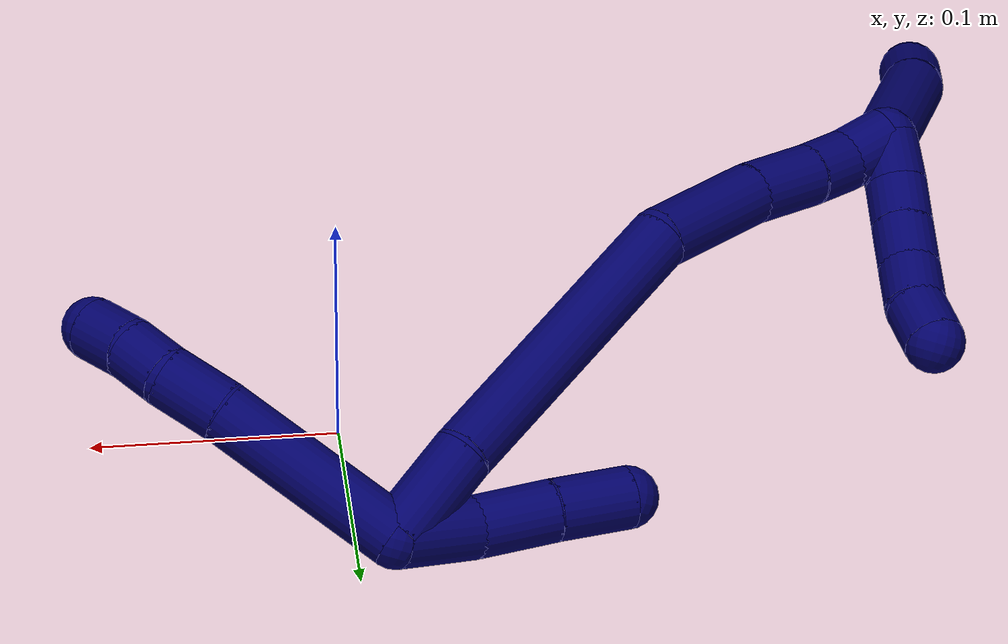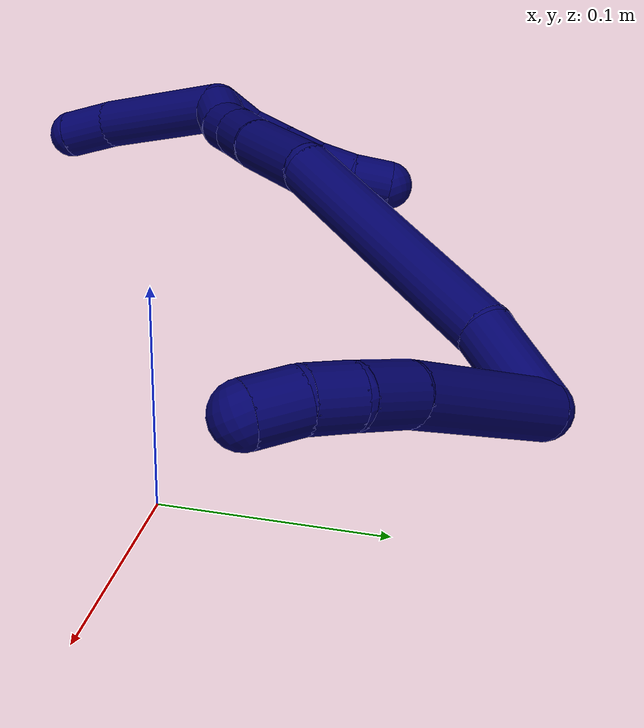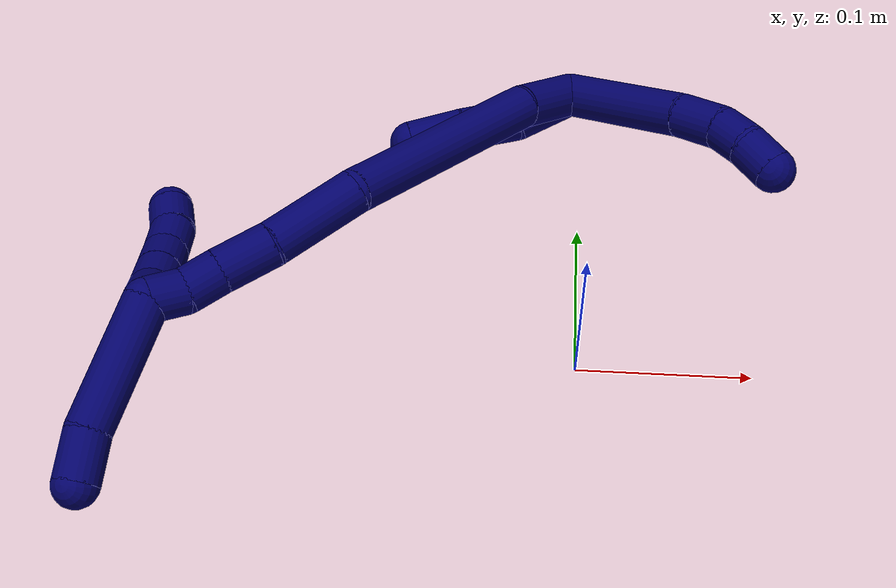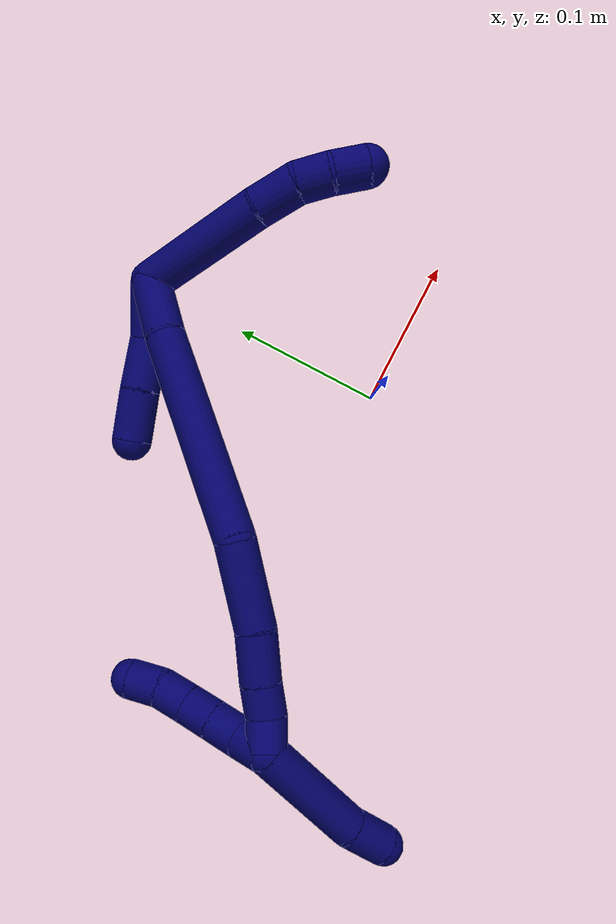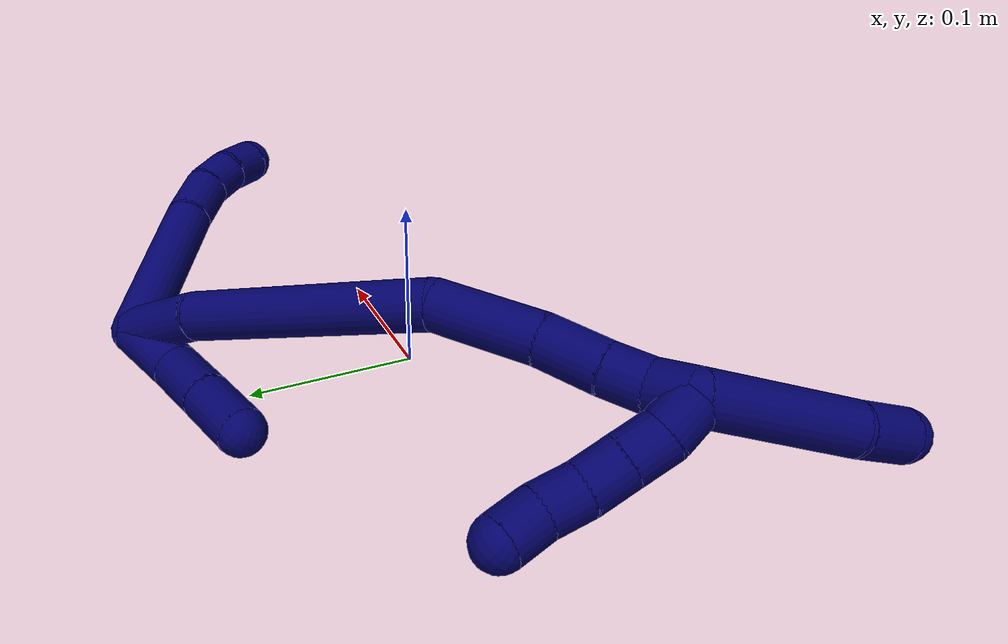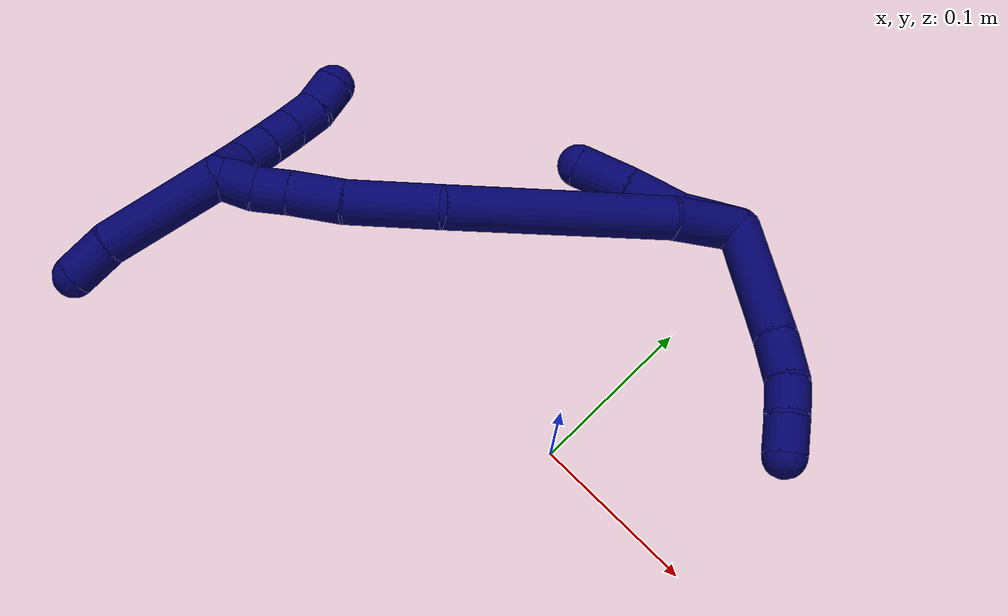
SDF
<sdf version="1.7">
 <world name="default">
  <model name="7">
   <static>0</static>
   <link name="7">
    <collision name="collision-cylinder-e_1_2_8">
     <pose>0.034176 -0.018055 0.013488 0.929188 0.987816 0.527137</pose>
     <geometry><cylinder><radius>0.0125</radius><length>0.081875</length></cylinder></geometry>
     <surface>
      <friction><ode><mu>1.16</mu><mu2>1.16</mu2><slip1>0</slip1><slip2>0</slip2></ode></friction>
      <contact><ode><kp>1e+06</kp><kd>1</kd><max_vel>0</max_vel><min_depth>0.001</min_depth></ode></contact>
     </surface>
    </collision>
    <visual name="visual-cylinder-e_1_2_8">
     <pose>0.034176 -0.018055 0.013488 0.929188 0.987816 0.527137</pose>
     <geometry><cylinder><radius>0.0125</radius><length>0.081875</length></cylinder></geometry>
     <material><ambient>0.003922 0 0.403922 1</ambient></material>
    </visual>
    <collision name="collision-cylinder-e_2_8_9">
     <pose>0.079246 -0.043259 0.03042 1.12179 0.941265 0.618688</pose>
     <geometry><cylinder><radius>0.0125</radius><length>0.026956</length></cylinder></geometry>
     <surface>
      <friction><ode><mu>1.16</mu><mu2>1.16</mu2><slip1>0</slip1><slip2>0</slip2></ode></friction>
      <contact><ode><kp>1e+06</kp><kd>1</kd><max_vel>0</max_vel><min_depth>0.001</min_depth></ode></contact>
     </surface>
    </collision>
    <visual name="visual-cylinder-e_2_8_9">
     <pose>0.079246 -0.043259 0.03042 1.12179 0.941265 0.618688</pose>
     <geometry><cylinder><radius>0.0125</radius><length>0.026956</length></cylinder></geometry>
     <material><ambient>0.003922 0 0.403922 1</ambient></material>
    </visual>
    <collision name="collision-cylinder-e_3_9_10">
     <pose>0.096513 -0.057695 0.036774 1.1909 0.682127 0.471959</pose>
     <geometry><cylinder><radius>0.0125</radius><length>0.020216</length></cylinder></geometry>
     <surface>
      <friction><ode><mu>1.16</mu><mu2>1.16</mu2><slip1>0</slip1><slip2>0</slip2></ode></friction>
      <contact><ode><kp>1e+06</kp><kd>1</kd><max_vel>0</max_vel><min_depth>0.001</min_depth></ode></contact>
     </surface>
    </collision>
    <visual name="visual-cylinder-e_3_9_10">
     <pose>0.096513 -0.057695 0.036774 1.1909 0.682127 0.471959</pose>
     <geometry><cylinder><radius>0.0125</radius><length>0.020216</length></cylinder></geometry>
     <material><ambient>0.003922 0 0.403922 1</ambient></material>
    </visual>
    <collision name="collision-cylinder-e_4_10_6">
     <pose>0.108597 -0.073643 0.041134 1.40488 0.576655 0.491945</pose>
     <geometry><cylinder><radius>0.0125</radius><length>0.020952</length></cylinder></geometry>
     <surface>
      <friction><ode><mu>1.16</mu><mu2>1.16</mu2><slip1>0</slip1><slip2>0</slip2></ode></friction>
      <contact><ode><kp>1e+06</kp><kd>1</kd><max_vel>0</max_vel><min_depth>0.001</min_depth></ode></contact>
     </surface>
    </collision>
    <visual name="visual-cylinder-e_4_10_6">
     <pose>0.108597 -0.073643 0.041134 1.40488 0.576655 0.491945</pose>
     <geometry><cylinder><radius>0.0125</radius><length>0.020952</length></cylinder></geometry>
     <material><ambient>0.003922 0 0.403922 1</ambient></material>
    </visual>
    <collision name="collision-cylinder-e_1_2_11">
     <pose>-0.016119 -0.004759 0.005342 0.727691 -1.15308 -0.485455</pose>
     <geometry><cylinder><radius>0.0125</radius><length>0.035271</length></cylinder></geometry>
     <surface>
      <friction><ode><mu>1.16</mu><mu2>1.16</mu2><slip1>0</slip1><slip2>0</slip2></ode></friction>
      <contact><ode><kp>1e+06</kp><kd>1</kd><max_vel>0</max_vel><min_depth>0.001</min_depth></ode></contact>
     </surface>
    </collision>
    <visual name="visual-cylinder-e_1_2_11">
     <pose>-0.016119 -0.004759 0.005342 0.727691 -1.15308 -0.485455</pose>
     <geometry><cylinder><radius>0.0125</radius><length>0.035271</length></cylinder></geometry>
     <material><ambient>0.003922 0 0.403922 1</ambient></material>
    </visual>
    <collision name="collision-cylinder-e_2_11_12">
     <pose>-0.047083 -0.010214 0.017825 0.097289 -1.1206 -0.061065</pose>
     <geometry><cylinder><radius>0.0125</radius><length>0.032973</length></cylinder></geometry>
     <surface>
      <friction><ode><mu>1.16</mu><mu2>1.16</mu2><slip1>0</slip1><slip2>0</slip2></ode></friction>
      <contact><ode><kp>1e+06</kp><kd>1</kd><max_vel>0</max_vel><min_depth>0.001</min_depth></ode></contact>
     </surface>
    </collision>
    <visual name="visual-cylinder-e_2_11_12">
     <pose>-0.047083 -0.010214 0.017825 0.097289 -1.1206 -0.061065</pose>
     <geometry><cylinder><radius>0.0125</radius><length>0.032973</length></cylinder></geometry>
     <material><ambient>0.003922 0 0.403922 1</ambient></material>
    </visual>
    <collision name="collision-cylinder-e_3_12_5">
     <pose>-0.076464 -0.012464 0.031158 0.245659 -1.15697 -0.160879</pose>
     <geometry><cylinder><radius>0.0125</radius><length>0.031755</length></cylinder></geometry>
     <surface>
      <friction><ode><mu>1.16</mu><mu2>1.16</mu2><slip1>0</slip1><slip2>0</slip2></ode></friction>
      <contact><ode><kp>1e+06</kp><kd>1</kd><max_vel>0</max_vel><min_depth>0.001</min_depth></ode></contact>
     </surface>
    </collision>
    <visual name="visual-cylinder-e_3_12_5">
     <pose>-0.076464 -0.012464 0.031158 0.245659 -1.15697 -0.160879</pose>
     <geometry><cylinder><radius>0.0125</radius><length>0.031755</length></cylinder></geometry>
     <material><ambient>0.003922 0 0.403922 1</ambient></material>
    </visual>
    <collision name="collision-cylinder-e_1_2_13">
     <pose>-0.009987 -0.004998 0.018435 0.264775 -0.481782 -0.065404</pose>
     <geometry><cylinder><radius>0.0125</radius><length>0.043108</length></cylinder></geometry>
     <surface>
      <friction><ode><mu>1.16</mu><mu2>1.16</mu2><slip1>0</slip1><slip2>0</slip2></ode></friction>
      <contact><ode><kp>1e+06</kp><kd>1</kd><max_vel>0</max_vel><min_depth>0.001</min_depth></ode></contact>
     </surface>
    </collision>
    <visual name="visual-cylinder-e_1_2_13">
     <pose>-0.009987 -0.004998 0.018435 0.264775 -0.481782 -0.065404</pose>
     <geometry><cylinder><radius>0.0125</radius><length>0.043108</length></cylinder></geometry>
     <material><ambient>0.003922 0 0.403922 1</ambient></material>
    </visual>
    <collision name="collision-cylinder-e_2_13_14">
     <pose>-0.055202 -0.034795 0.086628 0.462334 -0.564791 -0.136376</pose>
     <geometry><cylinder><radius>0.0125</radius><length>0.131633</length></cylinder></geometry>
     <surface>
      <friction><ode><mu>1.16</mu><mu2>1.16</mu2><slip1>0</slip1><slip2>0</slip2></ode></friction>
      <contact><ode><kp>1e+06</kp><kd>1</kd><max_vel>0</max_vel><min_depth>0.001</min_depth></ode></contact>
     </surface>
    </collision>
    <visual name="visual-cylinder-e_2_13_14">
     <pose>-0.055202 -0.034795 0.086628 0.462334 -0.564791 -0.136376</pose>
     <geometry><cylinder><radius>0.0125</radius><length>0.131633</length></cylinder></geometry>
     <material><ambient>0.003922 0 0.403922 1</ambient></material>
    </visual>
    <collision name="collision-cylinder-e_3_14_15">
     <pose>-0.110361 -0.071205 0.149734 0.716006 -0.844832 -0.333201</pose>
     <geometry><cylinder><radius>0.0125</radius><length>0.053302</length></cylinder></geometry>
     <surface>
      <friction><ode><mu>1.16</mu><mu2>1.16</mu2><slip1>0</slip1><slip2>0</slip2></ode></friction>
      <contact><ode><kp>1e+06</kp><kd>1</kd><max_vel>0</max_vel><min_depth>0.001</min_depth></ode></contact>
     </surface>
    </collision>
    <visual name="visual-cylinder-e_3_14_15">
     <pose>-0.110361 -0.071205 0.149734 0.716006 -0.844832 -0.333201</pose>
     <geometry><cylinder><radius>0.0125</radius><length>0.053302</length></cylinder></geometry>
     <material><ambient>0.003922 0 0.403922 1</ambient></material>
    </visual>
    <collision name="collision-cylinder-e_4_15_16">
     <pose>-0.143102 -0.088076 0.169885 0.658066 -0.979659 -0.360151</pose>
     <geometry><cylinder><radius>0.0125</radius><length>0.030857</length></cylinder></geometry>
     <surface>
      <friction><ode><mu>1.16</mu><mu2>1.16</mu2><slip1>0</slip1><slip2>0</slip2></ode></friction>
      <contact><ode><kp>1e+06</kp><kd>1</kd><max_vel>0</max_vel><min_depth>0.001</min_depth></ode></contact>
     </surface>
    </collision>
    <visual name="visual-cylinder-e_4_15_16">
     <pose>-0.143102 -0.088076 0.169885 0.658066 -0.979659 -0.360151</pose>
     <geometry><cylinder><radius>0.0125</radius><length>0.030857</length></cylinder></geometry>
     <material><ambient>0.003922 0 0.403922 1</ambient></material>
    </visual>
    <collision name="collision-cylinder-e_5_16_17">
     <pose>-0.164065 -0.097377 0.181565 0.692055 -0.91026 -0.349293</pose>
     <geometry><cylinder><radius>0.0125</radius><length>0.020648</length></cylinder></geometry>
     <surface>
      <friction><ode><mu>1.16</mu><mu2>1.16</mu2><slip1>0</slip1><slip2>0</slip2></ode></friction>
      <contact><ode><kp>1e+06</kp><kd>1</kd><max_vel>0</max_vel><min_depth>0.001</min_depth></ode></contact>
     </surface>
    </collision>
    <visual name="visual-cylinder-e_5_16_17">
     <pose>-0.164065 -0.097377 0.181565 0.692055 -0.91026 -0.349293</pose>
     <geometry><cylinder><radius>0.0125</radius><length>0.020648</length></cylinder></geometry>
     <material><ambient>0.003922 0 0.403922 1</ambient></material>
    </visual>
    <collision name="collision-cylinder-e_6_17_1">
     <pose>-0.179823 -0.102769 0.193144 0.198723 -0.838568 -0.088808</pose>
     <geometry><cylinder><radius>0.0125</radius><length>0.020452</length></cylinder></geometry>
     <surface>
      <friction><ode><mu>1.16</mu><mu2>1.16</mu2><slip1>0</slip1><slip2>0</slip2></ode></friction>
      <contact><ode><kp>1e+06</kp><kd>1</kd><max_vel>0</max_vel><min_depth>0.001</min_depth></ode></contact>
     </surface>
    </collision>
    <visual name="visual-cylinder-e_6_17_1">
     <pose>-0.179823 -0.102769 0.193144 0.198723 -0.838568 -0.088808</pose>
     <geometry><cylinder><radius>0.0125</radius><length>0.020452</length></cylinder></geometry>
     <material><ambient>0.003922 0 0.403922 1</ambient></material>
    </visual>
    <collision name="collision-cylinder-e_1_1_18">
     <pose>-0.202139 -0.135497 0.211325 1.22007 -0.414764 -0.292042</pose>
     <geometry><cylinder><radius>0.0125</radius><length>0.073016</length></cylinder></geometry>
     <surface>
      <friction><ode><mu>1.16</mu><mu2>1.16</mu2><slip1>0</slip1><slip2>0</slip2></ode></friction>
      <contact><ode><kp>1e+06</kp><kd>1</kd><max_vel>0</max_vel><min_depth>0.001</min_depth></ode></contact>
     </surface>
    </collision>
    <visual name="visual-cylinder-e_1_1_18">
     <pose>-0.202139 -0.135497 0.211325 1.22007 -0.414764 -0.292042</pose>
     <geometry><cylinder><radius>0.0125</radius><length>0.073016</length></cylinder></geometry>
     <material><ambient>0.003922 0 0.403922 1</ambient></material>
    </visual>
    <collision name="collision-cylinder-e_2_18_4">
     <pose>-0.220191 -0.17957 0.225925 1.32983 -0.250132 -0.1965</pose>
     <geometry><cylinder><radius>0.0125</radius><length>0.026984</length></cylinder></geometry>
     <surface>
      <friction><ode><mu>1.16</mu><mu2>1.16</mu2><slip1>0</slip1><slip2>0</slip2></ode></friction>
      <contact><ode><kp>1e+06</kp><kd>1</kd><max_vel>0</max_vel><min_depth>0.001</min_depth></ode></contact>
     </surface>
    </collision>
    <visual name="visual-cylinder-e_2_18_4">
     <pose>-0.220191 -0.17957 0.225925 1.32983 -0.250132 -0.1965</pose>
     <geometry><cylinder><radius>0.0125</radius><length>0.026984</length></cylinder></geometry>
     <material><ambient>0.003922 0 0.403922 1</ambient></material>
    </visual>
    <collision name="collision-cylinder-e_1_1_19">
     <pose>-0.190669 -0.099957 0.19135 -2.68615 -0.330115 1.24644</pose>
     <geometry><cylinder><radius>0.0125</radius><length>0.02</length></cylinder></geometry>
     <surface>
      <friction><ode><mu>1.16</mu><mu2>1.16</mu2><slip1>0</slip1><slip2>0</slip2></ode></friction>
      <contact><ode><kp>1e+06</kp><kd>1</kd><max_vel>0</max_vel><min_depth>0.001</min_depth></ode></contact>
     </surface>
    </collision>
    <visual name="visual-cylinder-e_1_1_19">
     <pose>-0.190669 -0.099957 0.19135 -2.68615 -0.330115 1.24644</pose>
     <geometry><cylinder><radius>0.0125</radius><length>0.02</length></cylinder></geometry>
     <material><ambient>0.003922 0 0.403922 1</ambient></material>
    </visual>
    <collision name="collision-cylinder-e_2_19_20">
     <pose>-0.195285 -0.089502 0.175206 -2.45298 -0.137815 0.380287</pose>
     <geometry><cylinder><radius>0.0125</radius><length>0.02</length></cylinder></geometry>
     <surface>
      <friction><ode><mu>1.16</mu><mu2>1.16</mu2><slip1>0</slip1><slip2>0</slip2></ode></friction>
      <contact><ode><kp>1e+06</kp><kd>1</kd><max_vel>0</max_vel><min_depth>0.001</min_depth></ode></contact>
     </surface>
    </collision>
    <visual name="visual-cylinder-e_2_19_20">
     <pose>-0.195285 -0.089502 0.175206 -2.45298 -0.137815 0.380287</pose>
     <geometry><cylinder><radius>0.0125</radius><length>0.02</length></cylinder></geometry>
     <material><ambient>0.003922 0 0.403922 1</ambient></material>
    </visual>
    <collision name="collision-cylinder-e_3_20_21">
     <pose>-0.198113 -0.076921 0.159919 -2.45299 -0.146033 0.402455</pose>
     <geometry><cylinder><radius>0.0125</radius><length>0.02</length></cylinder></geometry>
     <surface>
      <friction><ode><mu>1.16</mu><mu2>1.16</mu2><slip1>0</slip1><slip2>0</slip2></ode></friction>
      <contact><ode><kp>1e+06</kp><kd>1</kd><max_vel>0</max_vel><min_depth>0.001</min_depth></ode></contact>
     </surface>
    </collision>
    <visual name="visual-cylinder-e_3_20_21">
     <pose>-0.198113 -0.076921 0.159919 -2.45299 -0.146033 0.402455</pose>
     <geometry><cylinder><radius>0.0125</radius><length>0.02</length></cylinder></geometry>
     <material><ambient>0.003922 0 0.403922 1</ambient></material>
    </visual>
    <collision name="collision-cylinder-e_4_21_22">
     <pose>-0.200294 -0.063408 0.145405 -2.33131 -0.072581 0.168909</pose>
     <geometry><cylinder><radius>0.0125</radius><length>0.02</length></cylinder></geometry>
     <surface>
      <friction><ode><mu>1.16</mu><mu2>1.16</mu2><slip1>0</slip1><slip2>0</slip2></ode></friction>
      <contact><ode><kp>1e+06</kp><kd>1</kd><max_vel>0</max_vel><min_depth>0.001</min_depth></ode></contact>
     </surface>
    </collision>
    <visual name="visual-cylinder-e_4_21_22">
     <pose>-0.200294 -0.063408 0.145405 -2.33131 -0.072581 0.168909</pose>
     <geometry><cylinder><radius>0.0125</radius><length>0.02</length></cylinder></geometry>
     <material><ambient>0.003922 0 0.403922 1</ambient></material>
    </visual>
    <collision name="collision-cylinder-e_5_22_3">
     <pose>-0.203756 -0.04836 0.132933 -2.19194 -0.277246 0.530043</pose>
     <geometry><cylinder><radius>0.0125</radius><length>0.02</length></cylinder></geometry>
     <surface>
      <friction><ode><mu>1.16</mu><mu2>1.16</mu2><slip1>0</slip1><slip2>0</slip2></ode></friction>
      <contact><ode><kp>1e+06</kp><kd>1</kd><max_vel>0</max_vel><min_depth>0.001</min_depth></ode></contact>
     </surface>
    </collision>
    <visual name="visual-cylinder-e_5_22_3">
     <pose>-0.203756 -0.04836 0.132933 -2.19194 -0.277246 0.530043</pose>
     <geometry><cylinder><radius>0.0125</radius><length>0.02</length></cylinder></geometry>
     <material><ambient>0.003922 0 0.403922 1</ambient></material>
    </visual>
    <collision name="collision-sphere-3">
     <pose>-0.206493 -0.040539 0.127335 0 -0 0</pose>
     <geometry><sphere><radius>0.0125</radius></sphere></geometry>
     <surface>
      <friction><ode><mu>1.16</mu><mu2>1.16</mu2><slip1>0</slip1><slip2>0</slip2></ode></friction>
      <contact><ode><kp>1e+06</kp><kd>1</kd><max_vel>0</max_vel><min_depth>0.001</min_depth></ode></contact>
     </surface>
    </collision>
    <visual name="visual-sphere-3">
     <pose>-0.206493 -0.040539 0.127335 0 -0 0</pose>
     <geometry><sphere><radius>0.0125</radius></sphere></geometry>
     <material><ambient>0.003922 0 0.403922 1</ambient></material>
    </visual>
    <collision name="collision-sphere-22">
     <pose>-0.201019 -0.056182 0.13853 0 -0 0</pose>
     <geometry><sphere><radius>0.0125</radius></sphere></geometry>
     <surface>
      <friction><ode><mu>1.16</mu><mu2>1.16</mu2><slip1>0</slip1><slip2>0</slip2></ode></friction>
      <contact><ode><kp>1e+06</kp><kd>1</kd><max_vel>0</max_vel><min_depth>0.001</min_depth></ode></contact>
     </surface>
    </collision>
    <visual name="visual-sphere-22">
     <pose>-0.201019 -0.056182 0.13853 0 -0 0</pose>
     <geometry><sphere><radius>0.0125</radius></sphere></geometry>
     <material><ambient>0.003922 0 0.403922 1</ambient></material>
    </visual>
    <collision name="collision-sphere-21">
     <pose>-0.199569 -0.070634 0.152279 0 -0 0</pose>
     <geometry><sphere><radius>0.0125</radius></sphere></geometry>
     <surface>
      <friction><ode><mu>1.16</mu><mu2>1.16</mu2><slip1>0</slip1><slip2>0</slip2></ode></friction>
      <contact><ode><kp>1e+06</kp><kd>1</kd><max_vel>0</max_vel><min_depth>0.001</min_depth></ode></contact>
     </surface>
    </collision>
    <visual name="visual-sphere-21">
     <pose>-0.199569 -0.070634 0.152279 0 -0 0</pose>
     <geometry><sphere><radius>0.0125</radius></sphere></geometry>
     <material><ambient>0.003922 0 0.403922 1</ambient></material>
    </visual>
    <collision name="collision-sphere-20">
     <pose>-0.196658 -0.083207 0.167558 0 -0 0</pose>
     <geometry><sphere><radius>0.0125</radius></sphere></geometry>
     <surface>
      <friction><ode><mu>1.16</mu><mu2>1.16</mu2><slip1>0</slip1><slip2>0</slip2></ode></friction>
      <contact><ode><kp>1e+06</kp><kd>1</kd><max_vel>0</max_vel><min_depth>0.001</min_depth></ode></contact>
     </surface>
    </collision>
    <visual name="visual-sphere-20">
     <pose>-0.196658 -0.083207 0.167558 0 -0 0</pose>
     <geometry><sphere><radius>0.0125</radius></sphere></geometry>
     <material><ambient>0.003922 0 0.403922 1</ambient></material>
    </visual>
    <collision name="collision-sphere-19">
     <pose>-0.193911 -0.095796 0.182854 0 -0 0</pose>
     <geometry><sphere><radius>0.0125</radius></sphere></geometry>
     <surface>
      <friction><ode><mu>1.16</mu><mu2>1.16</mu2><slip1>0</slip1><slip2>0</slip2></ode></friction>
      <contact><ode><kp>1e+06</kp><kd>1</kd><max_vel>0</max_vel><min_depth>0.001</min_depth></ode></contact>
     </surface>
    </collision>
    <visual name="visual-sphere-19">
     <pose>-0.193911 -0.095796 0.182854 0 -0 0</pose>
     <geometry><sphere><radius>0.0125</radius></sphere></geometry>
     <material><ambient>0.003922 0 0.403922 1</ambient></material>
    </visual>
    <collision name="collision-sphere-11">
     <pose>-0.032239 -0.009517 0.010684 0 -0 0</pose>
     <geometry><sphere><radius>0.0125</radius></sphere></geometry>
     <surface>
      <friction><ode><mu>1.16</mu><mu2>1.16</mu2><slip1>0</slip1><slip2>0</slip2></ode></friction>
      <contact><ode><kp>1e+06</kp><kd>1</kd><max_vel>0</max_vel><min_depth>0.001</min_depth></ode></contact>
     </surface>
    </collision>
    <visual name="visual-sphere-11">
     <pose>-0.032239 -0.009517 0.010684 0 -0 0</pose>
     <geometry><sphere><radius>0.0125</radius></sphere></geometry>
     <material><ambient>0.003922 0 0.403922 1</ambient></material>
    </visual>
    <collision name="collision-sphere-6">
     <pose>0.114309 -0.082304 0.042585 0 -0 0</pose>
     <geometry><sphere><radius>0.0125</radius></sphere></geometry>
     <surface>
      <friction><ode><mu>1.16</mu><mu2>1.16</mu2><slip1>0</slip1><slip2>0</slip2></ode></friction>
      <contact><ode><kp>1e+06</kp><kd>1</kd><max_vel>0</max_vel><min_depth>0.001</min_depth></ode></contact>
     </surface>
    </collision>
    <visual name="visual-sphere-6">
     <pose>0.114309 -0.082304 0.042585 0 -0 0</pose>
     <geometry><sphere><radius>0.0125</radius></sphere></geometry>
     <material><ambient>0.003922 0 0.403922 1</ambient></material>
    </visual>
    <collision name="collision-sphere-10">
     <pose>0.102886 -0.064981 0.039684 0 -0 0</pose>
     <geometry><sphere><radius>0.0125</radius></sphere></geometry>
     <surface>
      <friction><ode><mu>1.16</mu><mu2>1.16</mu2><slip1>0</slip1><slip2>0</slip2></ode></friction>
      <contact><ode><kp>1e+06</kp><kd>1</kd><max_vel>0</max_vel><min_depth>0.001</min_depth></ode></contact>
     </surface>
    </collision>
    <visual name="visual-sphere-10">
     <pose>0.102886 -0.064981 0.039684 0 -0 0</pose>
     <geometry><sphere><radius>0.0125</radius></sphere></geometry>
     <material><ambient>0.003922 0 0.403922 1</ambient></material>
    </visual>
    <collision name="collision-sphere-9">
     <pose>0.09014 -0.050408 0.033865 0 -0 0</pose>
     <geometry><sphere><radius>0.0125</radius></sphere></geometry>
     <surface>
      <friction><ode><mu>1.16</mu><mu2>1.16</mu2><slip1>0</slip1><slip2>0</slip2></ode></friction>
      <contact><ode><kp>1e+06</kp><kd>1</kd><max_vel>0</max_vel><min_depth>0.001</min_depth></ode></contact>
     </surface>
    </collision>
    <visual name="visual-sphere-9">
     <pose>0.09014 -0.050408 0.033865 0 -0 0</pose>
     <geometry><sphere><radius>0.0125</radius></sphere></geometry>
     <material><ambient>0.003922 0 0.403922 1</ambient></material>
    </visual>
    <collision name="collision-sphere-2">
     <geometry><sphere><radius>0.0125</radius></sphere></geometry>
     <surface>
      <friction><ode><mu>1.16</mu><mu2>1.16</mu2><slip1>0</slip1><slip2>0</slip2></ode></friction>
      <contact><ode><kp>1e+06</kp><kd>1</kd><max_vel>0</max_vel><min_depth>0.001</min_depth></ode></contact>
     </surface>
    </collision>
    <visual name="visual-sphere-2">
     <geometry><sphere><radius>0.0125</radius></sphere></geometry>
     <material><ambient>0.003922 0 0.403922 1</ambient></material>
    </visual>
    <collision name="collision-sphere-8">
     <pose>0.068352 -0.03611 0.026976 0 -0 0</pose>
     <geometry><sphere><radius>0.0125</radius></sphere></geometry>
     <surface>
      <friction><ode><mu>1.16</mu><mu2>1.16</mu2><slip1>0</slip1><slip2>0</slip2></ode></friction>
      <contact><ode><kp>1e+06</kp><kd>1</kd><max_vel>0</max_vel><min_depth>0.001</min_depth></ode></contact>
     </surface>
    </collision>
    <visual name="visual-sphere-8">
     <pose>0.068352 -0.03611 0.026976 0 -0 0</pose>
     <geometry><sphere><radius>0.0125</radius></sphere></geometry>
     <material><ambient>0.003922 0 0.403922 1</ambient></material>
    </visual>
    <collision name="collision-sphere-12">
     <pose>-0.061927 -0.010911 0.024965 0 -0 0</pose>
     <geometry><sphere><radius>0.0125</radius></sphere></geometry>
     <surface>
      <friction><ode><mu>1.16</mu><mu2>1.16</mu2><slip1>0</slip1><slip2>0</slip2></ode></friction>
      <contact><ode><kp>1e+06</kp><kd>1</kd><max_vel>0</max_vel><min_depth>0.001</min_depth></ode></contact>
     </surface>
    </collision>
    <visual name="visual-sphere-12">
     <pose>-0.061927 -0.010911 0.024965 0 -0 0</pose>
     <geometry><sphere><radius>0.0125</radius></sphere></geometry>
     <material><ambient>0.003922 0 0.403922 1</ambient></material>
    </visual>
    <collision name="collision-sphere-5">
     <pose>-0.091001 -0.014016 0.037351 0 -0 0</pose>
     <geometry><sphere><radius>0.0125</radius></sphere></geometry>
     <surface>
      <friction><ode><mu>1.16</mu><mu2>1.16</mu2><slip1>0</slip1><slip2>0</slip2></ode></friction>
      <contact><ode><kp>1e+06</kp><kd>1</kd><max_vel>0</max_vel><min_depth>0.001</min_depth></ode></contact>
     </surface>
    </collision>
    <visual name="visual-sphere-5">
     <pose>-0.091001 -0.014016 0.037351 0 -0 0</pose>
     <geometry><sphere><radius>0.0125</radius></sphere></geometry>
     <material><ambient>0.003922 0 0.403922 1</ambient></material>
    </visual>
    <collision name="collision-sphere-13">
     <pose>-0.019975 -0.009997 0.03687 0 -0 0</pose>
     <geometry><sphere><radius>0.0125</radius></sphere></geometry>
     <surface>
      <friction><ode><mu>1.16</mu><mu2>1.16</mu2><slip1>0</slip1><slip2>0</slip2></ode></friction>
      <contact><ode><kp>1e+06</kp><kd>1</kd><max_vel>0</max_vel><min_depth>0.001</min_depth></ode></contact>
     </surface>
    </collision>
    <visual name="visual-sphere-13">
     <pose>-0.019975 -0.009997 0.03687 0 -0 0</pose>
     <geometry><sphere><radius>0.0125</radius></sphere></geometry>
     <material><ambient>0.003922 0 0.403922 1</ambient></material>
    </visual>
    <collision name="collision-sphere-14">
     <pose>-0.09043 -0.059592 0.136387 0 -0 0</pose>
     <geometry><sphere><radius>0.0125</radius></sphere></geometry>
     <surface>
      <friction><ode><mu>1.16</mu><mu2>1.16</mu2><slip1>0</slip1><slip2>0</slip2></ode></friction>
      <contact><ode><kp>1e+06</kp><kd>1</kd><max_vel>0</max_vel><min_depth>0.001</min_depth></ode></contact>
     </surface>
    </collision>
    <visual name="visual-sphere-14">
     <pose>-0.09043 -0.059592 0.136387 0 -0 0</pose>
     <geometry><sphere><radius>0.0125</radius></sphere></geometry>
     <material><ambient>0.003922 0 0.403922 1</ambient></material>
    </visual>
    <collision name="collision-sphere-15">
     <pose>-0.130292 -0.082818 0.163082 0 -0 0</pose>
     <geometry><sphere><radius>0.0125</radius></sphere></geometry>
     <surface>
      <friction><ode><mu>1.16</mu><mu2>1.16</mu2><slip1>0</slip1><slip2>0</slip2></ode></friction>
      <contact><ode><kp>1e+06</kp><kd>1</kd><max_vel>0</max_vel><min_depth>0.001</min_depth></ode></contact>
     </surface>
    </collision>
    <visual name="visual-sphere-15">
     <pose>-0.130292 -0.082818 0.163082 0 -0 0</pose>
     <geometry><sphere><radius>0.0125</radius></sphere></geometry>
     <material><ambient>0.003922 0 0.403922 1</ambient></material>
    </visual>
    <collision name="collision-sphere-16">
     <pose>-0.155913 -0.093335 0.176688 0 -0 0</pose>
     <geometry><sphere><radius>0.0125</radius></sphere></geometry>
     <surface>
      <friction><ode><mu>1.16</mu><mu2>1.16</mu2><slip1>0</slip1><slip2>0</slip2></ode></friction>
      <contact><ode><kp>1e+06</kp><kd>1</kd><max_vel>0</max_vel><min_depth>0.001</min_depth></ode></contact>
     </surface>
    </collision>
    <visual name="visual-sphere-16">
     <pose>-0.155913 -0.093335 0.176688 0 -0 0</pose>
     <geometry><sphere><radius>0.0125</radius></sphere></geometry>
     <material><ambient>0.003922 0 0.403922 1</ambient></material>
    </visual>
    <collision name="collision-sphere-17">
     <pose>-0.172218 -0.101419 0.186442 0 -0 0</pose>
     <geometry><sphere><radius>0.0125</radius></sphere></geometry>
     <surface>
      <friction><ode><mu>1.16</mu><mu2>1.16</mu2><slip1>0</slip1><slip2>0</slip2></ode></friction>
      <contact><ode><kp>1e+06</kp><kd>1</kd><max_vel>0</max_vel><min_depth>0.001</min_depth></ode></contact>
     </surface>
    </collision>
    <visual name="visual-sphere-17">
     <pose>-0.172218 -0.101419 0.186442 0 -0 0</pose>
     <geometry><sphere><radius>0.0125</radius></sphere></geometry>
     <material><ambient>0.003922 0 0.403922 1</ambient></material>
    </visual>
    <collision name="collision-sphere-1">
     <pose>-0.187428 -0.104119 0.199846 0 -0 0</pose>
     <geometry><sphere><radius>0.0125</radius></sphere></geometry>
     <surface>
      <friction><ode><mu>1.16</mu><mu2>1.16</mu2><slip1>0</slip1><slip2>0</slip2></ode></friction>
      <contact><ode><kp>1e+06</kp><kd>1</kd><max_vel>0</max_vel><min_depth>0.001</min_depth></ode></contact>
     </surface>
    </collision>
    <visual name="visual-sphere-1">
     <pose>-0.187428 -0.104119 0.199846 0 -0 0</pose>
     <geometry><sphere><radius>0.0125</radius></sphere></geometry>
     <material><ambient>0.003922 0 0.403922 1</ambient></material>
    </visual>
    <collision name="collision-sphere-18">
     <pose>-0.216851 -0.166875 0.222805 0 -0 0</pose>
     <geometry><sphere><radius>0.0125</radius></sphere></geometry>
     <surface>
      <friction><ode><mu>1.16</mu><mu2>1.16</mu2><slip1>0</slip1><slip2>0</slip2></ode></friction>
      <contact><ode><kp>1e+06</kp><kd>1</kd><max_vel>0</max_vel><min_depth>0.001</min_depth></ode></contact>
     </surface>
    </collision>
    <visual name="visual-sphere-18">
     <pose>-0.216851 -0.166875 0.222805 0 -0 0</pose>
     <geometry><sphere><radius>0.0125</radius></sphere></geometry>
     <material><ambient>0.003922 0 0.403922 1</ambient></material>
    </visual>
    <collision name="collision-sphere-4">
     <pose>-0.223531 -0.192264 0.229045 0 -0 0</pose>
     <geometry><sphere><radius>0.0125</radius></sphere></geometry>
     <surface>
      <friction><ode><mu>1.16</mu><mu2>1.16</mu2><slip1>0</slip1><slip2>0</slip2></ode></friction>
      <contact><ode><kp>1e+06</kp><kd>1</kd><max_vel>0</max_vel><min_depth>0.001</min_depth></ode></contact>
     </surface>
    </collision>
    <visual name="visual-sphere-4">
     <pose>-0.223531 -0.192264 0.229045 0 -0 0</pose>
     <geometry><sphere><radius>0.0125</radius></sphere></geometry>
     <material><ambient>0.003922 0 0.403922 1</ambient></material>
    </visual>
    <inertial>
     <pose>-0.081216 -0.058636 0.101384 0 -0 0</pose>
     <mass>0.75</mass>
     <inertia>
      <ixx>0.000218</ixx>
      <ixy>0</ixy>
      <ixz>0</ixz>
      <iyy>0.00024</iyy>
      <iyz>0</iyz>
      <izz>0.000266</izz>
     </inertia>
    </inertial>
   </link>
   <pose>-0.008817 0.155809 0.061963 0.507258 -0.406858 0.027619</pose>
  </model>
 </world>
</sdf>
